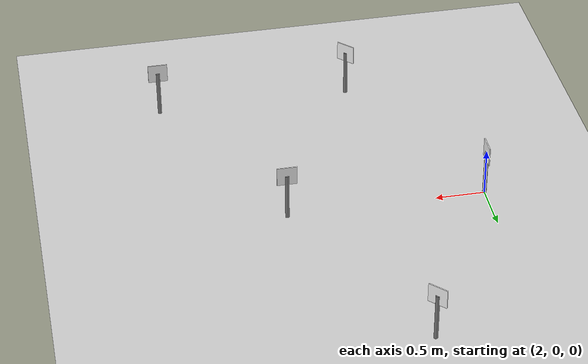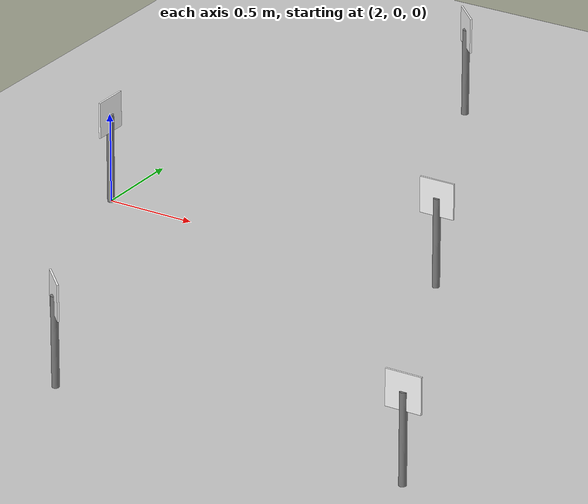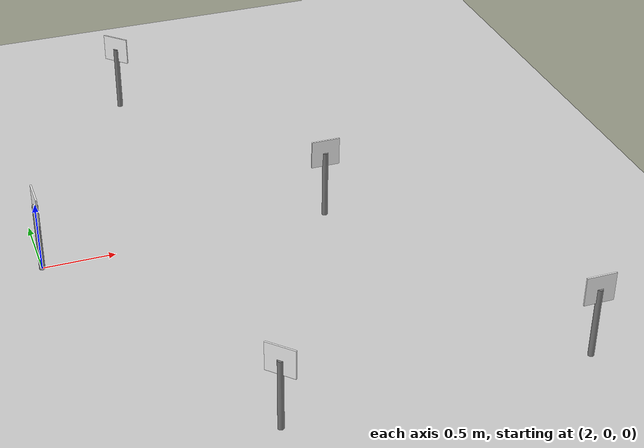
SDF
<?xml version='1.0'?>
<sdf version='1.10'>
  <world name='aruco_world'>
    <!-- Physics and plugins -->
    <physics name='1ms' type='ignored'>
      <max_step_size>0.001</max_step_size>
      <real_time_factor>1</real_time_factor>
      <real_time_update_rate>1000</real_time_update_rate>
    </physics>
    <plugin name='gz::sim::systems::Physics' filename='gz-sim-physics-system'/>
    <plugin name='gz::sim::systems::UserCommands' filename='gz-sim-user-commands-system'/>
    <plugin name='gz::sim::systems::SceneBroadcaster' filename='gz-sim-scene-broadcaster-system'/>
    <plugin name='gz::sim::systems::Sensors' filename='gz-sim-sensors-system'>
      <render_engine>ogre2</render_engine>
    </plugin>
    <plugin name='gz::sim::systems::Imu' filename='gz-sim-imu-system'/>

    <gravity>0 0 -9.8</gravity>

    <scene>
      <ambient>0.4 0.4 0.4 1</ambient>
      <background>0.7 0.7 0.7 1</background>
      <shadows>true</shadows>
    </scene>

    <!-- Sunlight -->
    <light name='sun' type='directional'>
      <cast_shadows>true</cast_shadows>
      <pose>0 0 10 0 0 0</pose>
      <diffuse>0.8 0.8 0.8 1</diffuse>
      <specular>0.2 0.2 0.2 1</specular>
      <direction>-0.5 0.1 -0.9</direction>
    </light>

    <!-- Ground Plane -->
    <model name='ground_plane'>
      <static>true</static>
      <link name='link'>
        <collision name='collision'>
          <geometry>
            <plane>
              <normal>0 0 1</normal>
              <size>100 100</size>
            </plane>
          </geometry>
        </collision>
        <visual name='visual'>
          <geometry>
            <plane>
              <normal>0 0 1</normal>
              <size>100 100</size>
            </plane>
          </geometry>
          <material>
            <ambient>0.8 0.8 0.8 1</ambient>
            <diffuse>0.8 0.8 0.8 1</diffuse>
            <specular>0.8 0.8 0.8 1</specular>
          </material>
        </visual>
      </link>
    </model>

    <!-- ArUco Marker 0 - First stop -->
    <model name='aruco_marker_0'>
      <static>true</static>
      <pose>2 0 0.5 0 0 3.14159</pose>
      <link name='link'>
        <visual name='visual'>
          <geometry>
            <box>
              <size>0.01 0.2 0.2</size>
            </box>
          </geometry>
          <material>
            <ambient>1 1 1 1</ambient>
            <diffuse>1 1 1 1</diffuse>
            <specular>0 0 0 1</specular>
            <pbr>
              <metal>
                <albedo_map>model://aruco_marker_0/marker_0.png</albedo_map>
              </metal>
            </pbr>
          </material>
        </visual>
      </link>
    </model>

    <!-- Marker 0 Stand -->
    <model name='stand_0'>
      <static>true</static>
      <pose>2 0 0.25 0 0 0</pose>
      <link name='link'>
        <visual name='visual'>
          <geometry>
            <cylinder>
              <radius>0.02</radius>
              <length>0.5</length>
            </cylinder>
          </geometry>
          <material>
            <ambient>0.3 0.3 0.3 1</ambient>
            <diffuse>0.5 0.5 0.5 1</diffuse>
          </material>
        </visual>
      </link>
    </model>

    <!-- ArUco Marker 1 -->
    <model name='aruco_marker_1'>
      <static>true</static>
      <pose>3 2 0.5 0 0 -2.356</pose>
      <link name='link'>
        <visual name='visual'>
          <geometry>
            <box>
              <size>0.01 0.2 0.2</size>
            </box>
          </geometry>
          <material>
            <ambient>1 1 1 1</ambient>
            <diffuse>1 1 1 1</diffuse>
            <specular>0 0 0 1</specular>
            <pbr>
              <metal>
                <albedo_map>model://aruco_marker_1/marker_1.png</albedo_map>
              </metal>
            </pbr>
          </material>
        </visual>
      </link>
    </model>

    <!-- Marker 1 Stand -->
    <model name='stand_1'>
      <static>true</static>
      <pose>3 2 0.25 0 0 0</pose>
      <link name='link'>
        <visual name='visual'>
          <geometry>
            <cylinder>
              <radius>0.02</radius>
              <length>0.5</length>
            </cylinder>
          </geometry>
          <material>
            <ambient>0.3 0.3 0.3 1</ambient>
            <diffuse>0.5 0.5 0.5 1</diffuse>
          </material>
        </visual>
      </link>
    </model>

    <!-- ArUco Marker 2 -->
    <model name='aruco_marker_2'>
      <static>true</static>
      <pose>4 0 0.5 0 0 -1.5708</pose>
      <link name='link'>
        <visual name='visual'>
          <geometry>
            <box>
              <size>0.01 0.2 0.2</size>
            </box>
          </geometry>
          <material>
            <ambient>1 1 1 1</ambient>
            <diffuse>1 1 1 1</diffuse>
            <specular>0 0 0 1</specular>
            <pbr>
              <metal>
                <albedo_map>model://aruco_marker_2/marker_2.png</albedo_map>
              </metal>
            </pbr>
          </material>
        </visual>
      </link>
    </model>

    <!-- Marker 2 Stand -->
    <model name='stand_2'>
      <static>true</static>
      <pose>4 0 0.25 0 0 0</pose>
      <link name='link'>
        <visual name='visual'>
          <geometry>
            <cylinder>
              <radius>0.02</radius>
              <length>0.5</length>
            </cylinder>
          </geometry>
          <material>
            <ambient>0.3 0.3 0.3 1</ambient>
            <diffuse>0.5 0.5 0.5 1</diffuse>
          </material>
        </visual>
      </link>
    </model>

    <!-- ArUco Marker 3 -->
    <model name='aruco_marker_3'>
      <static>true</static>
      <pose>3 -2 0.5 0 0 0.7854</pose>
      <link name='link'>
        <visual name='visual'>
          <geometry>
            <box>
              <size>0.01 0.2 0.2</size>
            </box>
          </geometry>
          <material>
            <ambient>1 1 1 1</ambient>
            <diffuse>1 1 1 1</diffuse>
            <specular>0 0 0 1</specular>
            <pbr>
              <metal>
                <albedo_map>model://aruco_marker_3/marker_3.png</albedo_map>
              </metal>
            </pbr>
          </material>
        </visual>
      </link>
    </model>

    <!-- Marker 3 Stand -->
    <model name='stand_3'>
      <static>true</static>
      <pose>3 -2 0.25 0 0 0</pose>
      <link name='link'>
        <visual name='visual'>
          <geometry>
            <cylinder>
              <radius>0.02</radius>
              <length>0.5</length>
            </cylinder>
          </geometry>
          <material>
            <ambient>0.3 0.3 0.3 1</ambient>
            <diffuse>0.5 0.5 0.5 1</diffuse>
          </material>
        </visual>
      </link>
    </model>

    <!-- ArUco Marker 4 -->
    <model name='aruco_marker_4'>
      <static>true</static>
      <pose>5 -2 0.5 0 0 1.5708</pose>
      <link name='link'>
        <visual name='visual'>
          <geometry>
            <box>
              <size>0.01 0.2 0.2</size>
            </box>
          </geometry>
          <material>
            <ambient>1 1 1 1</ambient>
            <diffuse>1 1 1 1</diffuse>
            <specular>0 0 0 1</specular>
            <pbr>
              <metal>
                <albedo_map>model://aruco_marker_4/marker_4.png</albedo_map>
              </metal>
            </pbr>
          </material>
        </visual>
      </link>
    </model>

    <!-- Marker 4 Stand -->
    <model name='stand_4'>
      <static>true</static>
      <pose>5 -2 0.25 0 0 0</pose>
      <link name='link'>
        <visual name='visual'>
          <geometry>
            <cylinder>
              <radius>0.02</radius>
              <length>0.5</length>
            </cylinder>
          </geometry>
          <material>
            <ambient>0.3 0.3 0.3 1</ambient>
            <diffuse>0.5 0.5 0.5 1</diffuse>
          </material>
        </visual>
      </link>
    </model>

  </world>
</sdf>
